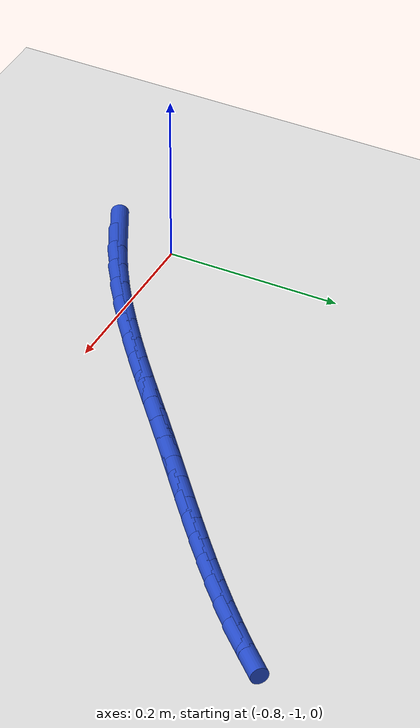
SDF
<sdf version="1.6">
 <world name="default">
  <model name="ground_plane">
   <static>1</static>
   <link name="link">
    <collision name="collision">
     <geometry><plane><normal>0 0 1</normal><size>100 100</size></plane></geometry>
     <surface><friction><ode><mu>100</mu><mu2>50</mu2></ode></friction></surface>
    </collision>
    <visual name="visual">
     <cast_shadows>0</cast_shadows>
     <geometry><plane><normal>0 0 1</normal><size>100 100</size></plane></geometry>
     <material>
      <script><uri>file://media/materials/scripts/gazebo.material</uri><name>Gazebo/WhiteGlow</name></script>
     </material>
    </visual>
   </link>
  </model>
  <model name="line">
   <link name="link_218">
    <pose>-0.7963568994986471 -1.0632439937721947 0.01 0 1.57 0.462804908624321</pose>
    <collision name="collision">
     <geometry><cylinder><radius>0.01</radius><length>0.08</length></cylinder></geometry>
    </collision>
    <visual name="visual">
     <material>
      <script><name>Gazebo/Blue</name><uri>file://media/materials/scripts/gazebo.material</uri></script>
     </material>
     <geometry><cylinder><radius>0.01</radius><length>0.08</length></cylinder></geometry>
    </visual>
   </link>
   <link name="link_219">
    <pose>-0.7664079963567811 -1.048301076361743 0.01 0 1.57 0.5103074536700681</pose>
    <collision name="collision">
     <geometry><cylinder><radius>0.01</radius><length>0.08</length></cylinder></geometry>
    </collision>
    <visual name="visual">
     <material>
      <script><name>Gazebo/Blue</name><uri>file://media/materials/scripts/gazebo.material</uri></script>
     </material>
     <geometry><cylinder><radius>0.01</radius><length>0.08</length></cylinder></geometry>
    </visual>
   </link>
   <link name="link_220">
    <pose>-0.7374103956308403 -1.0320693087548483 0.01 0 1.57 0.5527943628343969</pose>
    <collision name="collision">
     <geometry><cylinder><radius>0.01</radius><length>0.08</length></cylinder></geometry>
    </collision>
    <visual name="visual">
     <material>
      <script><name>Gazebo/Blue</name><uri>file://media/materials/scripts/gazebo.material</uri></script>
     </material>
     <geometry><cylinder><radius>0.01</radius><length>0.08</length></cylinder></geometry>
    </visual>
   </link>
   <link name="link_221">
    <pose>-0.7092434752436562 -1.0146915418874687 0.01 0 1.57 0.58992501097138</pose>
    <collision name="collision">
     <geometry><cylinder><radius>0.01</radius><length>0.08</length></cylinder></geometry>
    </collision>
    <visual name="visual">
     <material>
      <script><name>Gazebo/Blue</name><uri>file://media/materials/scripts/gazebo.material</uri></script>
     </material>
     <geometry><cylinder><radius>0.01</radius><length>0.08</length></cylinder></geometry>
    </visual>
   </link>
   <link name="link_222">
    <pose>-0.6817866131180573 -0.9963106266955611 0.01 0 1.57 0.621485452619478</pose>
    <collision name="collision">
     <geometry><cylinder><radius>0.01</radius><length>0.08</length></cylinder></geometry>
    </collision>
    <visual name="visual">
     <material>
      <script><name>Gazebo/Blue</name><uri>file://media/materials/scripts/gazebo.material</uri></script>
     </material>
     <geometry><cylinder><radius>0.01</radius><length>0.08</length></cylinder></geometry>
    </visual>
   </link>
   <link name="link_223">
    <pose>-0.6549191871768733 -0.9770694141150814 0.01 0 1.57 0.6473616020463914</pose>
    <collision name="collision">
     <geometry><cylinder><radius>0.01</radius><length>0.08</length></cylinder></geometry>
    </collision>
    <visual name="visual">
     <material>
      <script><name>Gazebo/Blue</name><uri>file://media/materials/scripts/gazebo.material</uri></script>
     </material>
     <geometry><cylinder><radius>0.01</radius><length>0.08</length></cylinder></geometry>
    </visual>
   </link>
   <link name="link_224">
    <pose>-0.628520575342934 -0.9571107550819873 0.01 0 1.57 0.667511717600509</pose>
    <collision name="collision">
     <geometry><cylinder><radius>0.01</radius><length>0.08</length></cylinder></geometry>
    </collision>
    <visual name="visual">
     <material>
      <script><name>Gazebo/Blue</name><uri>file://media/materials/scripts/gazebo.material</uri></script>
     </material>
     <geometry><cylinder><radius>0.01</radius><length>0.08</length></cylinder></geometry>
    </visual>
   </link>
   <link name="link_225">
    <pose>-0.6024701555390686 -0.9365775005322351 0.01 0 1.57 0.6819416708225887</pose>
    <collision name="collision">
     <geometry><cylinder><radius>0.01</radius><length>0.08</length></cylinder></geometry>
    </collision>
    <visual name="visual">
     <material>
      <script><name>Gazebo/Blue</name><uri>file://media/materials/scripts/gazebo.material</uri></script>
     </material>
     <geometry><cylinder><radius>0.01</radius><length>0.08</length></cylinder></geometry>
    </visual>
   </link>
   <link name="link_226">
    <pose>-0.576647305688107 -0.9156125014017817 0.01 0 1.57 0.690684976848229</pose>
    <collision name="collision">
     <geometry><cylinder><radius>0.01</radius><length>0.08</length></cylinder></geometry>
    </collision>
    <visual name="visual">
     <material>
      <script><name>Gazebo/Blue</name><uri>file://media/materials/scripts/gazebo.material</uri></script>
     </material>
     <geometry><cylinder><radius>0.01</radius><length>0.08</length></cylinder></geometry>
    </visual>
   </link>
   <link name="link_227">
    <pose>-0.5509314037128787 -0.8943586086265845 0.01 0 1.57 0.6937884306593403</pose>
    <collision name="collision">
     <geometry><cylinder><radius>0.01</radius><length>0.08</length></cylinder></geometry>
    </collision>
    <visual name="visual">
     <material>
      <script><name>Gazebo/Blue</name><uri>file://media/materials/scripts/gazebo.material</uri></script>
     </material>
     <geometry><cylinder><radius>0.01</radius><length>0.08</length></cylinder></geometry>
    </visual>
   </link>
   <link name="link_228">
    <pose>-0.5252018275362133 -0.8729586731425995 0.01 0 1.57 0.6913235440687415</pose>
    <collision name="collision">
     <geometry><cylinder><radius>0.01</radius><length>0.08</length></cylinder></geometry>
    </collision>
    <visual name="visual">
     <material>
      <script><name>Gazebo/Blue</name><uri>file://media/materials/scripts/gazebo.material</uri></script>
     </material>
     <geometry><cylinder><radius>0.01</radius><length>0.08</length></cylinder></geometry>
    </visual>
   </link>
   <link name="link_229">
    <pose>-0.4993384433489765 -0.8515550763867393 0.01 0 1.57 0.6860497214491009</pose>
    <collision name="collision">
     <geometry><cylinder><radius>0.01</radius><length>0.08</length></cylinder></geometry>
    </collision>
    <visual name="visual">
     <material>
      <script><name>Gazebo/Blue</name><uri>file://media/materials/scripts/gazebo.material</uri></script>
     </material>
     <geometry><cylinder><radius>0.01</radius><length>0.08</length></cylinder></geometry>
    </visual>
   </link>
   <link name="link_230">
    <pose>-0.47328729233501476 -0.8302265685654873 0.01 0 1.57 0.6833935608839425</pose>
    <collision name="collision">
     <geometry><cylinder><radius>0.01</radius><length>0.08</length></cylinder></geometry>
    </collision>
    <visual name="visual">
     <material>
      <script><name>Gazebo/Blue</name><uri>file://media/materials/scripts/gazebo.material</uri></script>
     </material>
     <geometry><cylinder><radius>0.01</radius><length>0.08</length></cylinder></geometry>
    </visual>
   </link>
   <link name="link_231">
    <pose>-0.4471269417716061 -0.8089244680865499 0.01 0 1.57 0.6839765484192496</pose>
    <collision name="collision">
     <geometry><cylinder><radius>0.01</radius><length>0.08</length></cylinder></geometry>
    </collision>
    <visual name="visual">
     <material>
      <script><name>Gazebo/Blue</name><uri>file://media/materials/scripts/gazebo.material</uri></script>
     </material>
     <geometry><cylinder><radius>0.01</radius><length>0.08</length></cylinder></geometry>
    </visual>
   </link>
   <link name="link_232">
    <pose>-0.4209517595032246 -0.7875849001632425 0.01 0 1.57 0.6877902469632196</pose>
    <collision name="collision">
     <geometry><cylinder><radius>0.01</radius><length>0.08</length></cylinder></geometry>
    </collision>
    <visual name="visual">
     <material>
      <script><name>Gazebo/Blue</name><uri>file://media/materials/scripts/gazebo.material</uri></script>
     </material>
     <geometry><cylinder><radius>0.01</radius><length>0.08</length></cylinder></geometry>
    </visual>
   </link>
   <link name="link_233">
    <pose>-0.3948561133743446 -0.7661439900088803 0.01 0 1.57 0.694844711892935</pose>
    <collision name="collision">
     <geometry><cylinder><radius>0.01</radius><length>0.08</length></cylinder></geometry>
    </collision>
    <visual name="visual">
     <material>
      <script><name>Gazebo/Blue</name><uri>file://media/materials/scripts/gazebo.material</uri></script>
     </material>
     <geometry><cylinder><radius>0.01</radius><length>0.08</length></cylinder></geometry>
    </visual>
   </link>
   <link name="link_234">
    <pose>-0.3689343712294406 -0.7445378628367796 0.01 0 1.57 0.7051673714002129</pose>
    <collision name="collision">
     <geometry><cylinder><radius>0.01</radius><length>0.08</length></cylinder></geometry>
    </collision>
    <visual name="visual">
     <material>
      <script><name>Gazebo/Blue</name><uri>file://media/materials/scripts/gazebo.material</uri></script>
     </material>
     <geometry><cylinder><radius>0.01</radius><length>0.08</length></cylinder></geometry>
    </visual>
   </link>
   <link name="link_235">
    <pose>-0.3432809009129868 -0.7227026438602555 0.01 0 1.57 0.7188010822889015</pose>
    <collision name="collision">
     <geometry><cylinder><radius>0.01</radius><length>0.08</length></cylinder></geometry>
    </collision>
    <visual name="visual">
     <material>
      <script><name>Gazebo/Blue</name><uri>file://media/materials/scripts/gazebo.material</uri></script>
     </material>
     <geometry><cylinder><radius>0.01</radius><length>0.08</length></cylinder></geometry>
    </visual>
   </link>
   <link name="link_236">
    <pose>-0.3179900702694569 -0.7005744582926233 0.01 0 1.57 0.7358012276920334</pose>
    <collision name="collision">
     <geometry><cylinder><radius>0.01</radius><length>0.08</length></cylinder></geometry>
    </collision>
    <visual name="visual">
     <material>
      <script><name>Gazebo/Blue</name><uri>file://media/materials/scripts/gazebo.material</uri></script>
     </material>
     <geometry><cylinder><radius>0.01</radius><length>0.08</length></cylinder></geometry>
    </visual>
   </link>
   <link name="link_237">
    <pose>-0.29315624714332644 -0.6780894313471996 0.01 0 1.57 0.7562316658850967</pose>
    <collision name="collision">
     <geometry><cylinder><radius>0.01</radius><length>0.08</length></cylinder></geometry>
    </collision>
    <visual name="visual">
     <material>
      <script><name>Gazebo/Blue</name><uri>file://media/materials/scripts/gazebo.material</uri></script>
     </material>
     <geometry><cylinder><radius>0.01</radius><length>0.08</length></cylinder></geometry>
    </visual>
   </link>
   <link name="link_238">
    <pose>-0.2688737993790692 -0.6551836882372992 0.01 0 1.57 0.7801592997534</pose>
    <collision name="collision">
     <geometry><cylinder><radius>0.01</radius><length>0.08</length></cylinder></geometry>
    </collision>
    <visual name="visual">
     <material>
      <script><name>Gazebo/Blue</name><uri>file://media/materials/scripts/gazebo.material</uri></script>
     </material>
     <geometry><cylinder><radius>0.01</radius><length>0.08</length></cylinder></geometry>
    </visual>
   </link>
   <link name="link_239">
    <pose>-0.24523709482115943 -0.631793354176238 0.01 0 1.57 0.807647027864942</pose>
    <collision name="collision">
     <geometry><cylinder><radius>0.01</radius><length>0.08</length></cylinder></geometry>
    </collision>
    <visual name="visual">
     <material>
      <script><name>Gazebo/Blue</name><uri>file://media/materials/scripts/gazebo.material</uri></script>
     </material>
     <geometry><cylinder><radius>0.01</radius><length>0.08</length></cylinder></geometry>
    </visual>
   </link>
  </model>
 </world>
</sdf>
